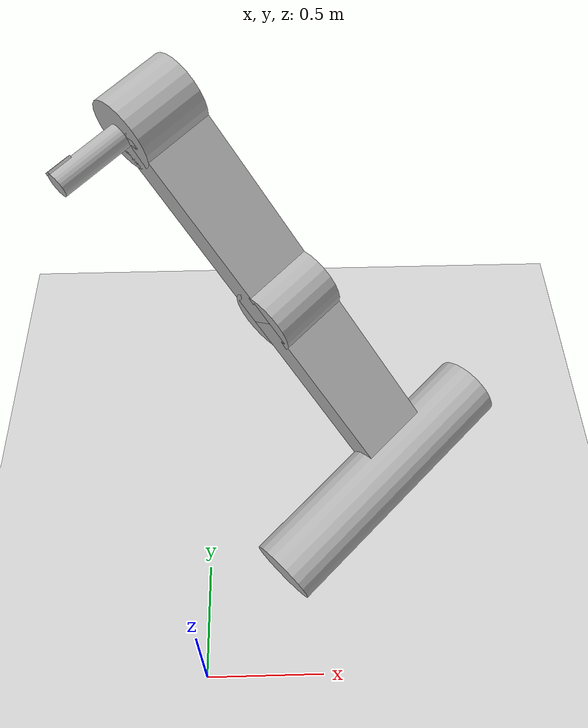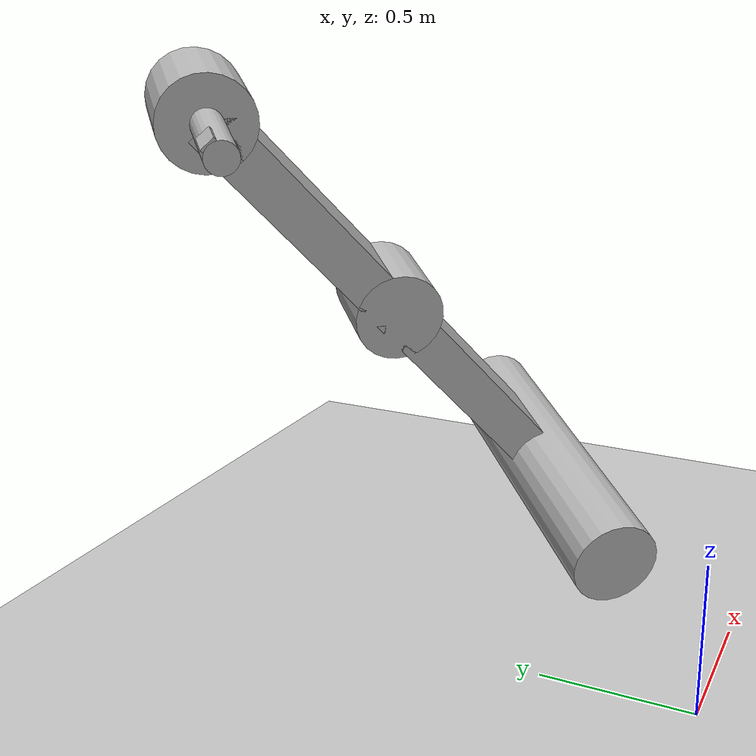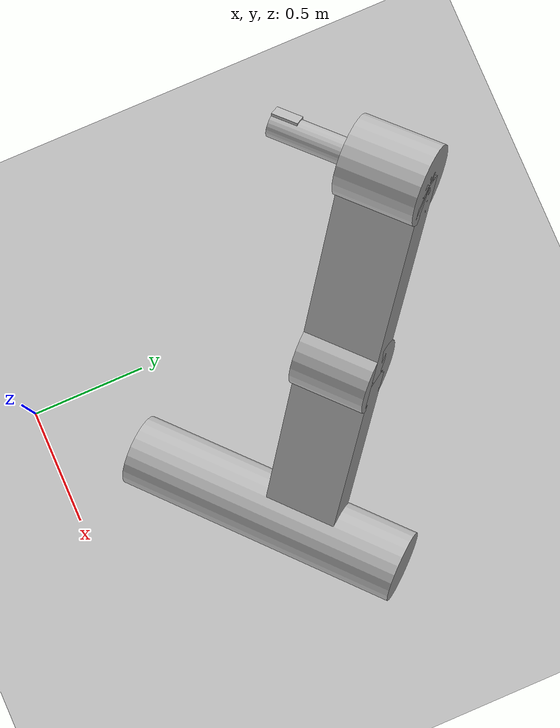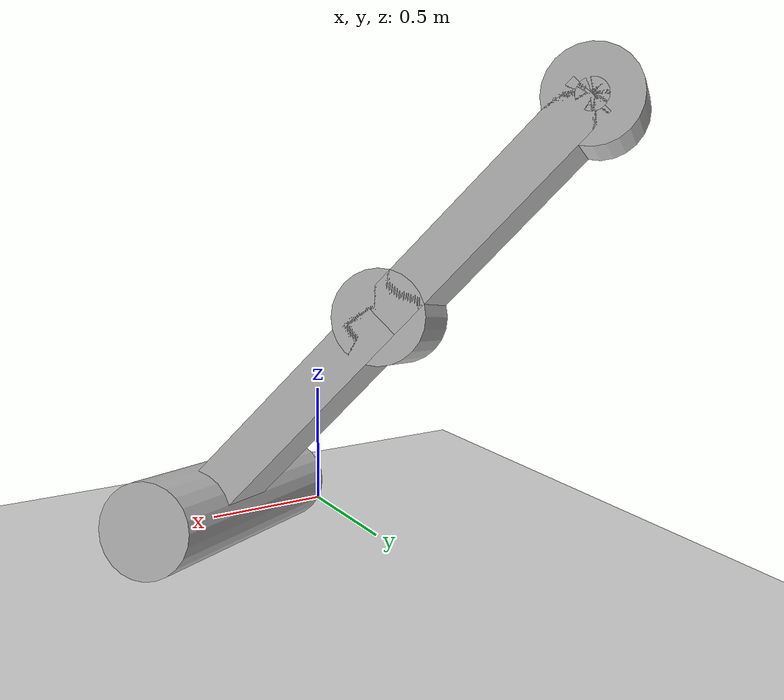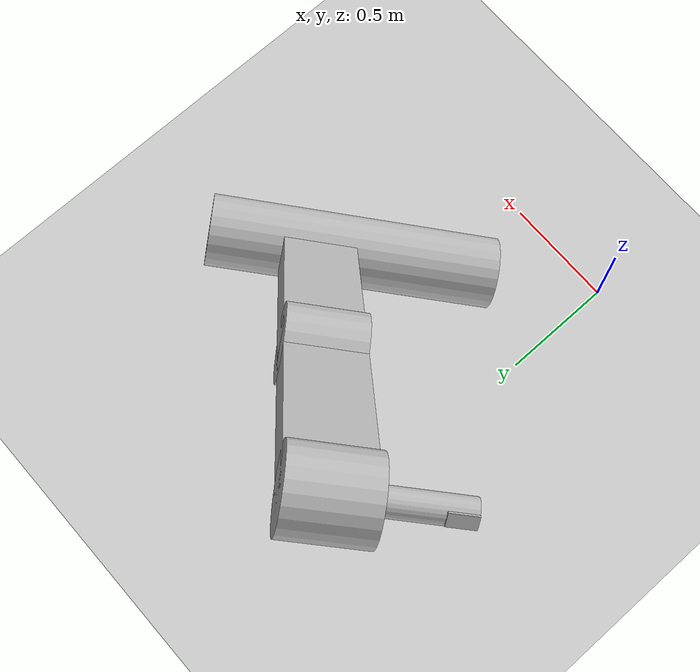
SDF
<sdf version="1.6">
 <world name="default">
  <light name="sun" type="directional">
   <pose>0 0 10 0 -0 0</pose>
   <diffuse>0.8 0.8 0.8 1</diffuse>
   <specular>0.1 0.1 0.1 1</specular>
   <attenuation>
    <range>1000</range>
    <constant>0.9</constant>
    <linear>0.01</linear>
    <quadratic>0.001</quadratic>
   </attenuation>
   <direction>-0.5 0.5 -1</direction>
  </light>
  <model name="ground_plane">
   <static>1</static>
   <link name="link">
    <collision name="collision">
     <geometry><plane><normal>0 0 1</normal><size>100 100</size></plane></geometry>
     <surface><friction><ode><mu>100</mu><mu2>50</mu2></ode></friction></surface>
    </collision>
    <visual name="visual">
     <cast_shadows>0</cast_shadows>
     <geometry><plane><normal>0 0 1</normal><size>100 100</size></plane></geometry>
     <material>
      <script><uri>file://media/materials/scripts/gazebo.material</uri><name>Gazebo/Grey</name></script>
     </material>
    </visual>
   </link>
  </model>
  <gravity>0 0 -9.8</gravity>
  <magnetic_field>6e-06 2.3e-05 -4.2e-05</magnetic_field>
  <atmosphere type="adiabatic"/>
  <physics name="default_physics" default="0" type="ode">
   <max_step_size>0.001</max_step_size>
   <real_time_factor>1</real_time_factor>
   <real_time_update_rate>1000</real_time_update_rate>
  </physics>
  <scene><ambient>0.4 0.4 0.4 1</ambient><background>0.7 0.7 0.7 1</background><shadows>1</shadows></scene>
  <spherical_coordinates>
   <surface_model>EARTH_WGS84</surface_model>
   <latitude_deg>0</latitude_deg>
   <longitude_deg>0</longitude_deg>
   <elevation>0</elevation>
   <heading_deg>0</heading_deg>
  </spherical_coordinates>
  <model name="scara">
   <link name="base_link">
    <inertial>
     <mass>1000</mass>
     <inertia><ixx>0</ixx><ixy>0</ixy><ixz>0</ixz><iyy>0</iyy><iyz>0</iyz><izz>1</izz></inertia>
    </inertial>
    <collision name="base_link_collision">
     <geometry><cylinder><length>1.2</length><radius>0.15</radius></cylinder></geometry>
    </collision>
    <visual name="base_link_visual">
     <pose>0 0 0.6 0 -0 0</pose>
     <geometry><cylinder><length>1.2</length><radius>0.15</radius></cylinder></geometry>
    </visual>
   </link>
   <link name="first_link">
    <pose>0 0 0.75 0 -0 0</pose>
    <inertial>
     <mass>10</mass>
     <inertia><ixx>0</ixx><ixy>0</ixy><ixz>0</ixz><iyy>0</iyy><iyz>0</iyz><izz>1</izz></inertia>
    </inertial>
    <collision name="first_link_collision"><geometry><box><size>0.9 0.15 0.3</size></box></geometry></collision>
    <visual name="first_link_visual">
     <pose>0.45 0 0 0 -0 0</pose>
     <geometry><box><size>0.9 0.15 0.3</size></box></geometry>
    </visual>
   </link>
   <joint name="base_to_first_link" type="revolute">
    <child>first_link</child>
    <parent>base_link</parent>
    <axis>
     <xyz>0 0 1</xyz>
     <limit><lower>-2.6</lower><upper>2.6</upper><effort>1000</effort><velocity>0.5</velocity></limit>
     <dynamics><spring_reference>0</spring_reference><spring_stiffness>0</spring_stiffness></dynamics>
     <use_parent_model_frame>1</use_parent_model_frame>
    </axis>
   </joint>
   <link name="first_joint">
    <pose>0.9 0 0.75 0 -0 0</pose>
    <inertial>
     <mass>20</mass>
     <inertia><ixx>0</ixx><ixy>0</ixy><ixz>0</ixz><iyy>0</iyy><iyz>0</iyz><izz>2</izz></inertia>
    </inertial>
    <collision name="first_joint_collision">
     <geometry><cylinder><length>0.3</length><radius>0.15</radius></cylinder></geometry>
    </collision>
    <collision name="first_joint_fixed_joint_lump__second_link_collision_1">
     <geometry><box><size>0.9 0.15 0.3</size></box></geometry>
    </collision>
    <visual name="first_joint_visual">
     <geometry><cylinder><length>0.3</length><radius>0.15</radius></cylinder></geometry>
    </visual>
    <visual name="first_joint_fixed_joint_lump__second_link_visual_1">
     <pose>0.45 0 0 0 -0 0</pose>
     <geometry><box><size>0.9 0.15 0.3</size></box></geometry>
    </visual>
   </link>
   <joint name="first_link_to_first_joint" type="revolute">
    <child>first_joint</child>
    <parent>first_link</parent>
    <axis>
     <xyz>0 0 1</xyz>
     <limit><lower>-2.6</lower><upper>2.6</upper><effort>1000</effort><velocity>0.5</velocity></limit>
     <dynamics><spring_reference>0</spring_reference><spring_stiffness>0</spring_stiffness></dynamics>
     <use_parent_model_frame>1</use_parent_model_frame>
    </axis>
   </joint>
   <link name="second_joint">
    <pose>1.8 0 0.75 0 -0 0</pose>
    <inertial>
     <mass>10</mass>
     <inertia><ixx>0</ixx><ixy>0</ixy><ixz>0</ixz><iyy>0</iyy><iyz>0</iyz><izz>1</izz></inertia>
    </inertial>
    <collision name="second_joint_collision">
     <geometry><cylinder><length>0.3</length><radius>0.15</radius></cylinder></geometry>
    </collision>
    <visual name="second_joint_visual">
     <geometry><cylinder><length>0.3</length><radius>0.15</radius></cylinder></geometry>
    </visual>
   </link>
   <joint name="second_link_to_second_joint" type="revolute">
    <child>second_joint</child>
    <parent>first_joint</parent>
    <axis>
     <xyz>0 0 1</xyz>
     <limit><lower>-1e+16</lower><upper>1e+16</upper></limit>
     <dynamics><spring_reference>0</spring_reference><spring_stiffness>0</spring_stiffness></dynamics>
     <use_parent_model_frame>1</use_parent_model_frame>
    </axis>
   </joint>
   <link name="third_link">
    <pose>1.8 0 0.75 0 -0 0</pose>
    <inertial>
     <pose>0 0 -0.225 0 -0 0</pose>
     <mass>20</mass>
     <inertia><ixx>1.0125</ixx><ixy>0</ixy><ixz>0</ixz><iyy>1.0125</iyy><iyz>0</iyz><izz>2</izz></inertia>
    </inertial>
    <collision name="third_link_collision">
     <geometry><cylinder><length>0.6</length><radius>0.05</radius></cylinder></geometry>
    </collision>
    <collision name="third_link_fixed_joint_lump__wrist_link_collision_1">
     <pose>0 0 -0.45 0 -0 0</pose>
     <geometry><box><size>0.01 0.05 0.1</size></box></geometry>
    </collision>
    <visual name="third_link_visual">
     <pose>0 0 -0.15 0 -0 0</pose>
     <geometry><cylinder><length>0.6</length><radius>0.05</radius></cylinder></geometry>
    </visual>
    <visual name="third_link_fixed_joint_lump__wrist_link_visual_1">
     <pose>0.05 0 -0.4 0 -0 0</pose>
     <geometry><box><size>0.01 0.05 0.1</size></box></geometry>
    </visual>
   </link>
   <joint name="second_joint_to_third_joint" type="prismatic">
    <child>third_link</child>
    <parent>second_joint</parent>
    <axis>
     <xyz>0 0 1</xyz>
     <limit><lower>-0.3</lower><upper>0</upper><effort>1000</effort><velocity>0.5</velocity></limit>
     <dynamics><spring_reference>0</spring_reference><spring_stiffness>0</spring_stiffness></dynamics>
     <use_parent_model_frame>1</use_parent_model_frame>
    </axis>
   </joint>
   <pose>0.335289 0.361414 0.258939 1.29258 -0.827037 2.51939</pose>
  </model>
 </world>
</sdf>
